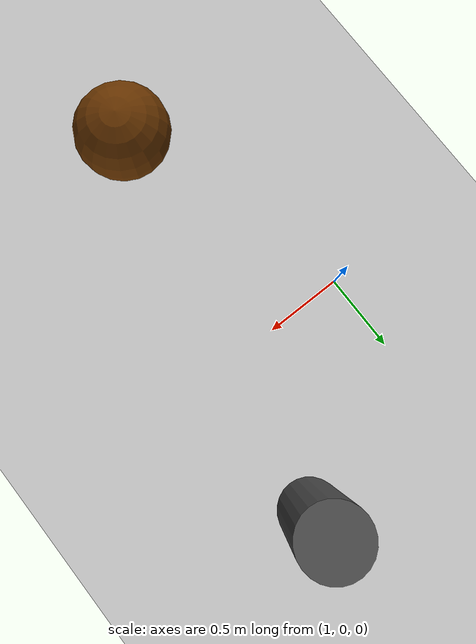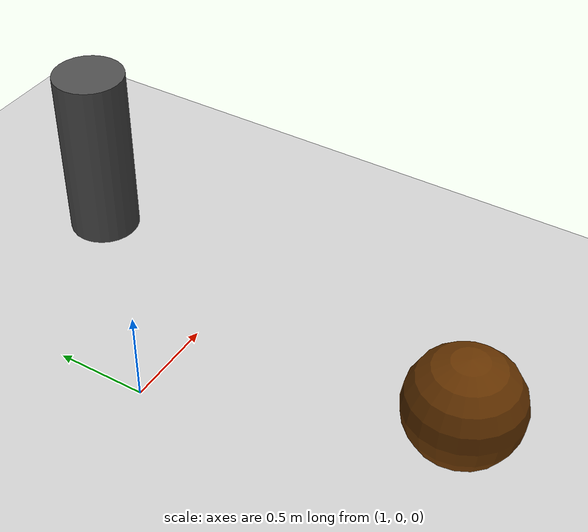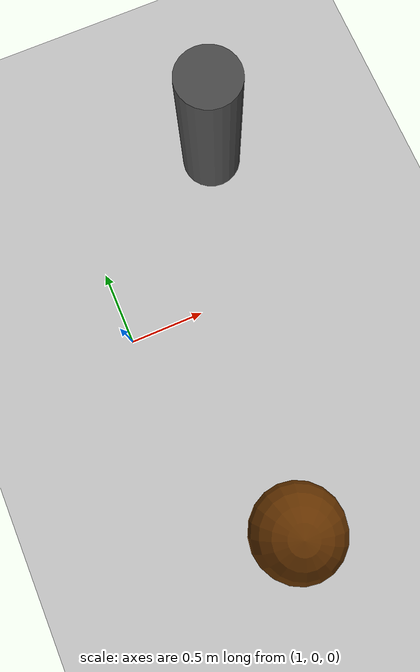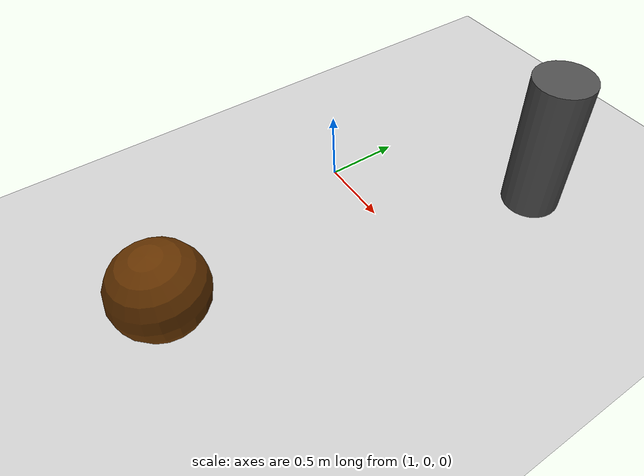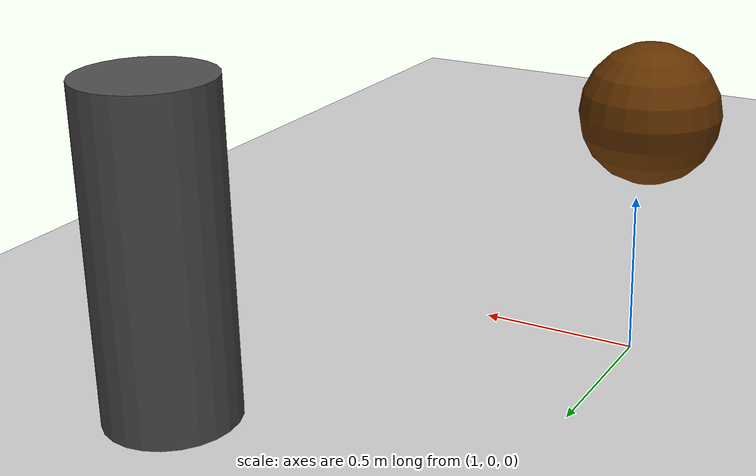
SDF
<?xml version="1.0" ?>
<sdf version="1.8">
    <world name="test_world">
        <physics name="1ms" type="ignored">
            <max_step_size>0.001</max_step_size>
            <real_time_factor>1.0</real_time_factor>
        </physics>

        <light type="directional" name="sun">
            <cast_shadows>true</cast_shadows>
            <pose>0 0 10 0 0 0</pose>
            <diffuse>0.8 0.8 0.8 1</diffuse>
            <specular>0.2 0.2 0.2 1</specular>
            <attenuation>
                <range>1000</range>
                <constant>0.9</constant>
                <linear>0.01</linear>
                <quadratic>0.001</quadratic>
            </attenuation>
            <direction>-0.5 0.1 -0.9</direction>
        </light>

        <model name="ground_plane">
            <static>true</static>
            <link name="link">
                <collision name="collision">
                    <geometry>
                        <plane>
                            <normal>0 0 1</normal>
                            <size>100 100</size>
                        </plane>
                    </geometry>
                </collision>
                <visual name="visual">
                    <geometry>
                        <plane>
                            <normal>0 0 1</normal>
                            <size>100 100</size>
                        </plane>
                    </geometry>
                    <material>
                        <ambient>0.8 0.8 0.8 1</ambient>
                        <diffuse>0.8 0.8 0.8 1</diffuse>
                        <specular>0.8 0.8 0.8 1</specular>
                    </material>
                </visual>
            </link>
        </model>

        <model name="pillar_obstacle">
            <static>true</static> <pose>2.0 1.0 0.5 0 0 0</pose> <link name="link">
                <collision name="collision">
                    <geometry><cylinder><radius>0.2</radius><length>1.0</length></cylinder></geometry>
                </collision>
                <visual name="visual">
                    <geometry><cylinder><radius>0.2</radius><length>1.0</length></cylinder></geometry>
                    <material>
                        <ambient>0.3 0.3 0.3 1</ambient> <diffuse>0.3 0.3 0.3 1</diffuse>
                    </material>
                </visual>
            </link>
        </model>

        <model name="rock_obstacle">
            <static>true</static>
            <pose>1.5 -1.5 0.3 0 0 0</pose> <link name="link">
                <collision name="collision">
                    <geometry><sphere><radius>0.3</radius></sphere></geometry>
                </collision>
                <visual name="visual">
                    <geometry><sphere><radius>0.3</radius></sphere></geometry>
                    <material>
                        <ambient>0.4 0.2 0.0 1</ambient> <diffuse>0.4 0.2 0.0 1</diffuse>
                    </material>
                </visual>
            </link>
        </model>
    </world>
</sdf>
